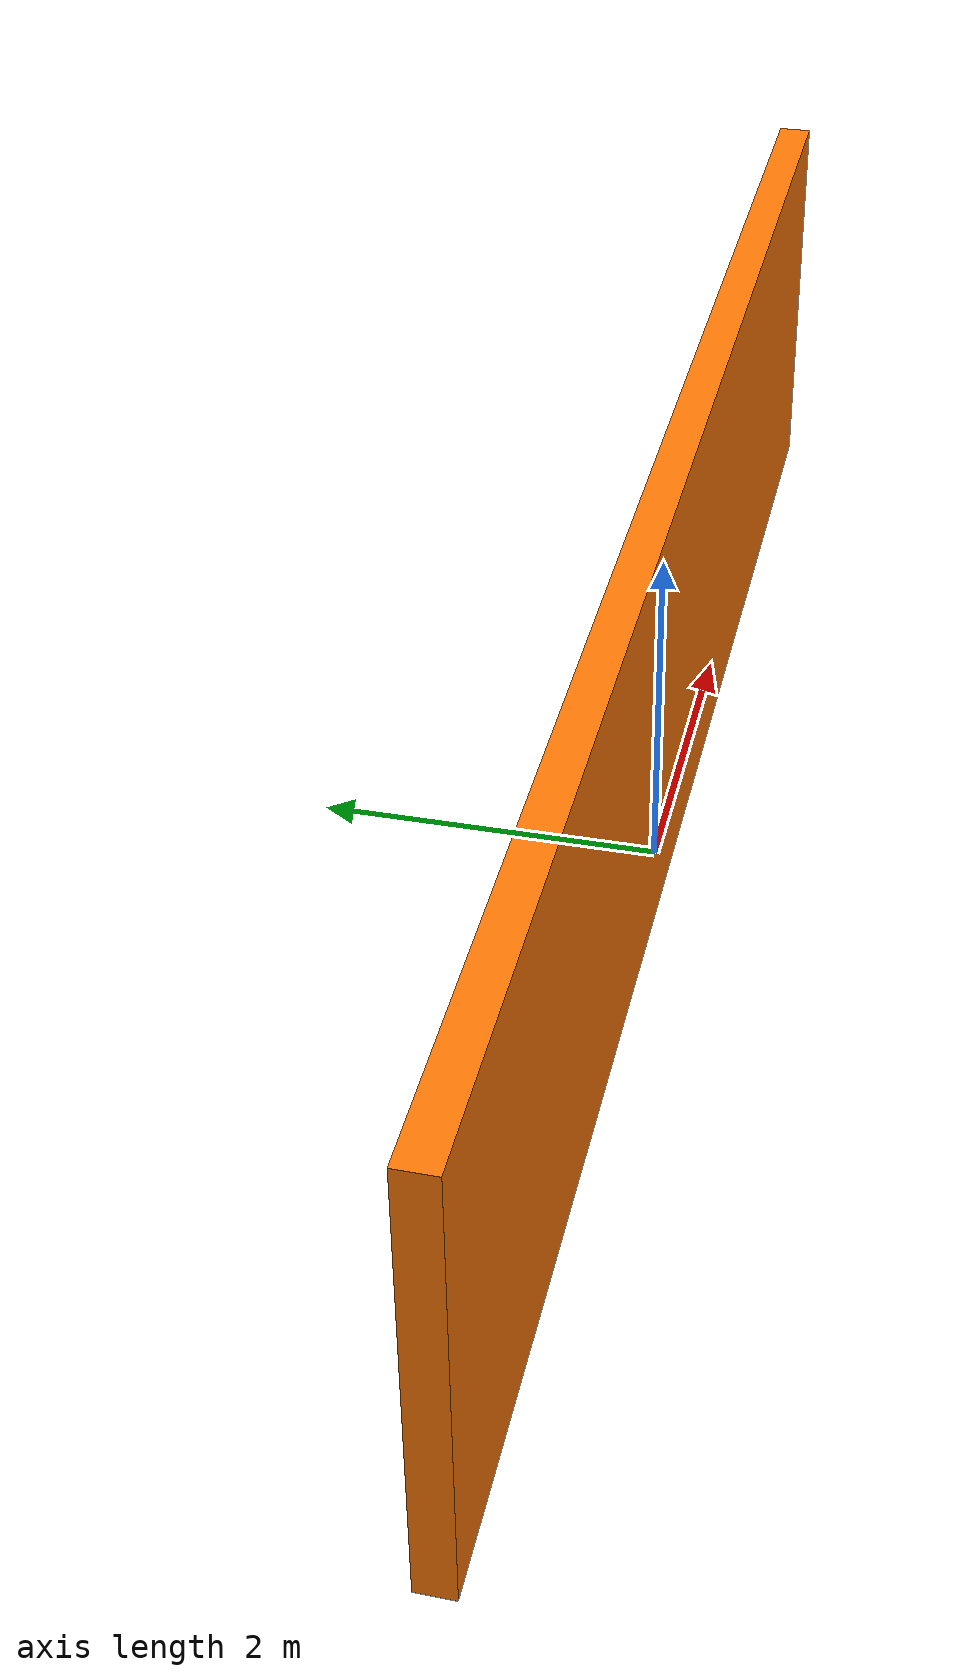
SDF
<?xml version='1.0'?>
<sdf version='1.7'>
  <model name='obs_box_10_0.2_2.5'>
      <link name='link_0'>
        <inertial>
          <mass>100</mass>
          <!-- 惯性张量建议也随尺寸调整，但对于 static 模型其实不重要 -->
          <inertia>
            <ixx>166.667</ixx><ixy>0</ixy><ixz>0</ixz>
            <iyy>166.667</iyy><iyz>0</iyz><izz>166.667</izz>
          </inertia>
        </inertial>

        <collision name='collision'>
          <pose>0 0 1.25 0 0 0</pose>
          <geometry>
            <box>
              <size>10.0 0.2 2.5</size>
            </box>
          </geometry>
          <surface>
            <contact>
              <ode>

                <kp>1e+06</kp>

                <kd>100</kd>

                <soft_cfm>0.001</soft_cfm>
                <soft_erp>0.2</soft_erp>
                <max_vel>0.1</max_vel>
                <min_depth>0.001</min_depth>
              </ode>
            </contact>
            <friction>
              <ode>

                <mu>1.0</mu>
                <mu2>1.0</mu2>
              </ode>
            </friction>
          </surface>
        </collision>

        <visual name='visual'>
          <pose>0 0 1.25 0 0 0</pose>
          <geometry>
            <box>
              <size>10.0 0.2 2.5</size>
            </box>
          </geometry>
          <material>
            <ambient>0.996 0.474 0.019 1</ambient> <!-- 保持你之前的橙色 -->
          <diffuse>0.996 0.474 0.019 1</diffuse>
          <specular>0.01 0.01 0.01 1</specular>
          </material>
        </visual>
      </link>

      <!-- 6. 开启自动休眠：如果不动时让它进入睡眠状态 -->
      <allow_auto_disable>1</allow_auto_disable>
      <static>0</static>
  </model>
</sdf>
